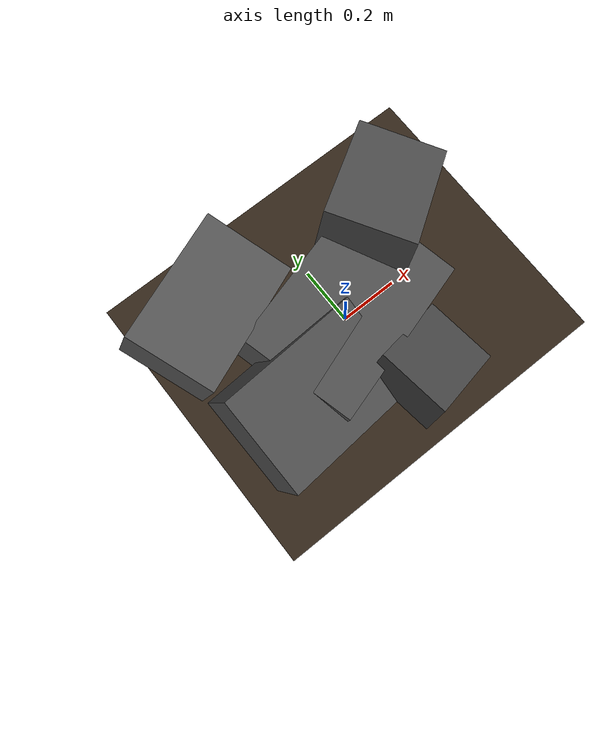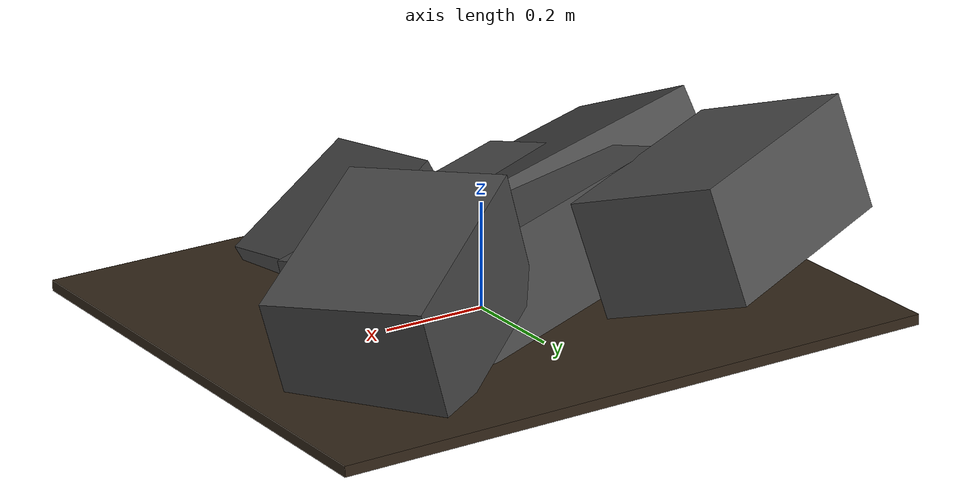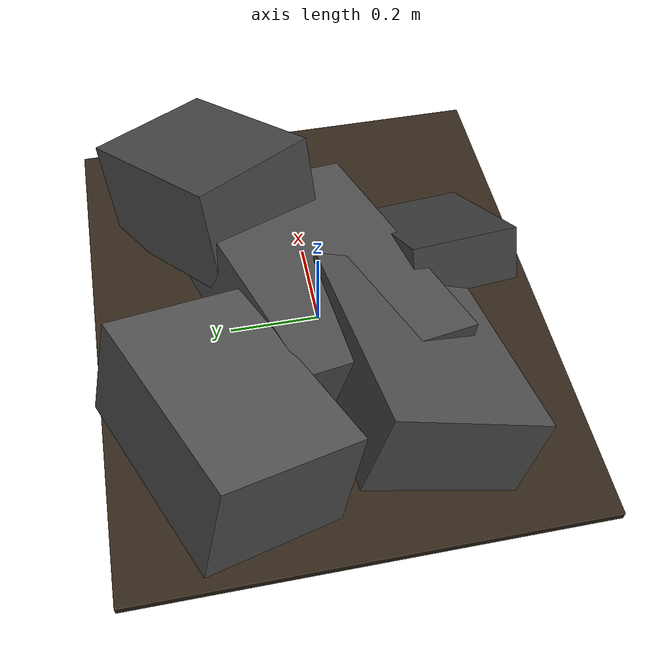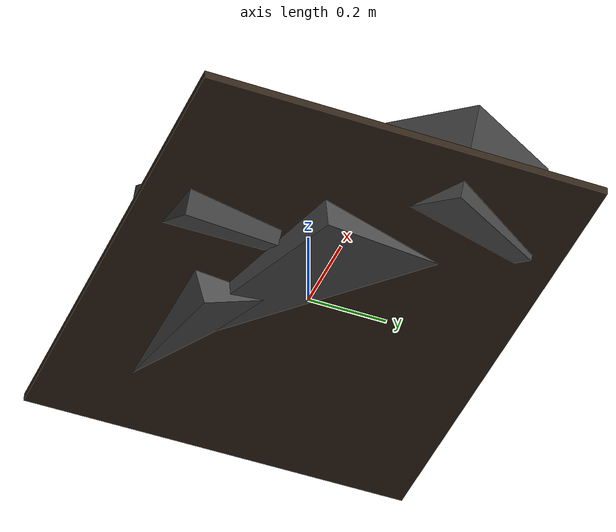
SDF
<?xml version="1.0" ?>
<sdf version="1.7">

  <model name="debris_pile">

    <static>true</static>

    <link name="debris_link">

      <!-- MAIN DEBRIS BLOCKS -->

      <visual name="chunk_1">
        <pose>0 0 0.1 0.2 0.1 0.3</pose>
        <geometry>
          <box>
            <size>0.6 0.4 0.2</size>
          </box>
        </geometry>
        <material>
          <ambient>0.25 0.25 0.25 1</ambient>
          <diffuse>0.3 0.3 0.3 1</diffuse>
        </material>
      </visual>

      <visual name="chunk_2">
        <pose>0.3 0.2 0.15 0.1 0.3 0.6</pose>
        <geometry>
          <box>
            <size>0.4 0.3 0.25</size>
          </box>
        </geometry>
        <material>
          <ambient>0.2 0.2 0.2 1</ambient>
          <diffuse>0.28 0.28 0.28 1</diffuse>
        </material>
      </visual>

      <visual name="chunk_3">
        <pose>-0.25 -0.15 0.12 0.4 0.2 0.1</pose>
        <geometry>
          <box>
            <size>0.5 0.35 0.18</size>
          </box>
        </geometry>
        <material>
          <ambient>0.22 0.22 0.22 1</ambient>
          <diffuse>0.3 0.3 0.3 1</diffuse>
        </material>
      </visual>

      <visual name="chunk_4">
        <pose>0.1 -0.3 0.08 0.1 0.5 0.2</pose>
        <geometry>
          <box>
            <size>0.3 0.25 0.12</size>
          </box>
        </geometry>
        <material>
          <ambient>0.18 0.18 0.18 1</ambient>
          <diffuse>0.25 0.25 0.25 1</diffuse>
        </material>
      </visual>

      <visual name="chunk_5">
        <pose>-0.35 0.25 0.2 0.3 0.1 0.4</pose>
        <geometry>
          <box>
            <size>0.45 0.3 0.22</size>
          </box>
        </geometry>
        <material>
          <ambient>0.24 0.24 0.24 1</ambient>
          <diffuse>0.32 0.32 0.32 1</diffuse>
        </material>
      </visual>

      <!-- SMALL RUBBLE PIECES -->

      <visual name="small_1">
        <pose>0.2 0.1 0.05 0 0 0</pose>
        <geometry>
          <box>
            <size>0.15 0.1 0.08</size>
          </box>
        </geometry>
        <material>
          <ambient>0.2 0.2 0.2 1</ambient>
          <diffuse>0.26 0.26 0.26 1</diffuse>
        </material>
      </visual>

      <visual name="small_2">
        <pose>-0.2 -0.2 0.06 0 0 0.3</pose>
        <geometry>
          <box>
            <size>0.12 0.12 0.06</size>
          </box>
        </geometry>
        <material>
          <ambient>0.18 0.18 0.18 1</ambient>
          <diffuse>0.24 0.24 0.24 1</diffuse>
        </material>
      </visual>

      <visual name="small_3">
        <pose>0.0 -0.25 0.04 0.2 0.1 0.5</pose>
        <geometry>
          <box>
            <size>0.1 0.1 0.05</size>
          </box>
        </geometry>
        <material>
          <ambient>0.22 0.22 0.22 1</ambient>
          <diffuse>0.28 0.28 0.28 1</diffuse>
        </material>
      </visual>

      <!-- GROUND DIRT BASE -->
      <visual name="base_dirt">

        <pose>0 0 0.01 0 0 0</pose>

        <geometry>
          <box>
            <size>1.2 1.0 0.02</size>
          </box>
        </geometry>

        <material>
          <ambient>0.15 0.12 0.08 1</ambient>
          <diffuse>0.2 0.15 0.1 1</diffuse>
        </material>

      </visual>

    </link>

  </model>

</sdf>
